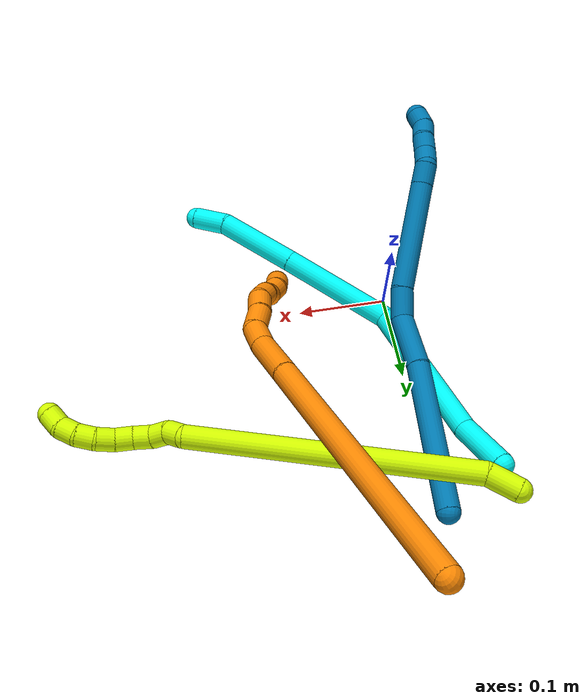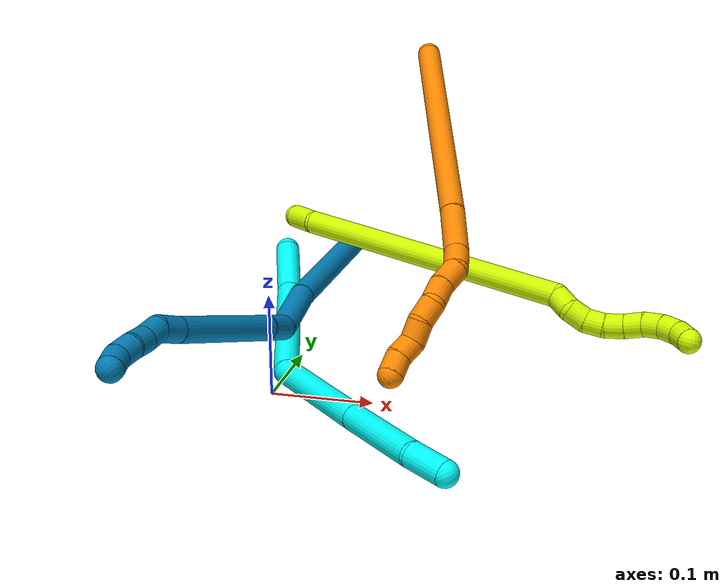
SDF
<sdf version="1.7">
 <world name="default">
  <model name="3">
   <static>0</static>
   <link name="3">
    <collision name="collision-cylinder-e_1_1_4">
     <pose>0.010417 -0.029861 0.008599 1.29041 0.323461 0.244379</pose>
     <geometry><cylinder><radius>0.0125</radius><length>0.065548</length></cylinder></geometry>
     <surface>
      <friction><ode><mu>1.16</mu><mu2>1.16</mu2><slip1>0</slip1><slip2>0</slip2></ode></friction>
      <contact><ode><kp>1e+06</kp><kd>1</kd><max_vel>0</max_vel><min_depth>0.001</min_depth></ode></contact>
     </surface>
    </collision>
    <visual name="visual-cylinder-e_1_1_4">
     <pose>0.010417 -0.029861 0.008599 1.29041 0.323461 0.244379</pose>
     <geometry><cylinder><radius>0.0125</radius><length>0.065548</length></cylinder></geometry>
     <material><ambient>0.003922 1 0.996078 1</ambient></material>
    </visual>
    <collision name="collision-cylinder-e_2_4_5">
     <pose>0.071344 -0.125309 0.033295 1.33013 0.642172 0.510306</pose>
     <geometry><cylinder><radius>0.0125</radius><length>0.168665</length></cylinder></geometry>
     <surface>
      <friction><ode><mu>1.16</mu><mu2>1.16</mu2><slip1>0</slip1><slip2>0</slip2></ode></friction>
      <contact><ode><kp>1e+06</kp><kd>1</kd><max_vel>0</max_vel><min_depth>0.001</min_depth></ode></contact>
     </surface>
    </collision>
    <visual name="visual-cylinder-e_2_4_5">
     <pose>0.071344 -0.125309 0.033295 1.33013 0.642172 0.510306</pose>
     <geometry><cylinder><radius>0.0125</radius><length>0.168665</length></cylinder></geometry>
     <material><ambient>0.003922 1 0.996078 1</ambient></material>
    </visual>
    <collision name="collision-cylinder-e_3_5_6">
     <pose>0.157525 -0.242766 0.028025 1.96154 0.566366 0.819942</pose>
     <geometry><cylinder><radius>0.0125</radius><length>0.132959</length></cylinder></geometry>
     <surface>
      <friction><ode><mu>1.16</mu><mu2>1.16</mu2><slip1>0</slip1><slip2>0</slip2></ode></friction>
      <contact><ode><kp>1e+06</kp><kd>1</kd><max_vel>0</max_vel><min_depth>0.001</min_depth></ode></contact>
     </surface>
    </collision>
    <visual name="visual-cylinder-e_3_5_6">
     <pose>0.157525 -0.242766 0.028025 1.96154 0.566366 0.819942</pose>
     <geometry><cylinder><radius>0.0125</radius><length>0.132959</length></cylinder></geometry>
     <material><ambient>0.003922 1 0.996078 1</ambient></material>
    </visual>
    <collision name="collision-cylinder-e_4_6_7">
     <pose>0.218288 -0.331309 -0.009322 1.98174 0.560227 0.827607</pose>
     <geometry><cylinder><radius>0.0125</radius><length>0.094441</length></cylinder></geometry>
     <surface>
      <friction><ode><mu>1.16</mu><mu2>1.16</mu2><slip1>0</slip1><slip2>0</slip2></ode></friction>
      <contact><ode><kp>1e+06</kp><kd>1</kd><max_vel>0</max_vel><min_depth>0.001</min_depth></ode></contact>
     </surface>
    </collision>
    <visual name="visual-cylinder-e_4_6_7">
     <pose>0.218288 -0.331309 -0.009322 1.98174 0.560227 0.827607</pose>
     <geometry><cylinder><radius>0.0125</radius><length>0.094441</length></cylinder></geometry>
     <material><ambient>0.003922 1 0.996078 1</ambient></material>
    </visual>
    <collision name="collision-cylinder-e_5_7_2">
     <pose>0.248713 -0.383937 -0.034539 2.09554 0.281587 0.482063</pose>
     <geometry><cylinder><radius>0.0125</radius><length>0.038387</length></cylinder></geometry>
     <surface>
      <friction><ode><mu>1.16</mu><mu2>1.16</mu2><slip1>0</slip1><slip2>0</slip2></ode></friction>
      <contact><ode><kp>1e+06</kp><kd>1</kd><max_vel>0</max_vel><min_depth>0.001</min_depth></ode></contact>
     </surface>
    </collision>
    <visual name="visual-cylinder-e_5_7_2">
     <pose>0.248713 -0.383937 -0.034539 2.09554 0.281587 0.482063</pose>
     <geometry><cylinder><radius>0.0125</radius><length>0.038387</length></cylinder></geometry>
     <material><ambient>0.003922 1 0.996078 1</ambient></material>
    </visual>
    <collision name="collision-sphere-2">
     <pose>0.254047 -0.399894 -0.043776 0 -0 0</pose>
     <geometry><sphere><radius>0.0125</radius></sphere></geometry>
     <surface>
      <friction><ode><mu>1.16</mu><mu2>1.16</mu2><slip1>0</slip1><slip2>0</slip2></ode></friction>
      <contact><ode><kp>1e+06</kp><kd>1</kd><max_vel>0</max_vel><min_depth>0.001</min_depth></ode></contact>
     </surface>
    </collision>
    <visual name="visual-sphere-2">
     <pose>0.254047 -0.399894 -0.043776 0 -0 0</pose>
     <geometry><sphere><radius>0.0125</radius></sphere></geometry>
     <material><ambient>0.003922 1 0.996078 1</ambient></material>
    </visual>
    <collision name="collision-sphere-7">
     <pose>0.24338 -0.36798 -0.025302 0 -0 0</pose>
     <geometry><sphere><radius>0.0125</radius></sphere></geometry>
     <surface>
      <friction><ode><mu>1.16</mu><mu2>1.16</mu2><slip1>0</slip1><slip2>0</slip2></ode></friction>
      <contact><ode><kp>1e+06</kp><kd>1</kd><max_vel>0</max_vel><min_depth>0.001</min_depth></ode></contact>
     </surface>
    </collision>
    <visual name="visual-sphere-7">
     <pose>0.24338 -0.36798 -0.025302 0 -0 0</pose>
     <geometry><sphere><radius>0.0125</radius></sphere></geometry>
     <material><ambient>0.003922 1 0.996078 1</ambient></material>
    </visual>
    <collision name="collision-sphere-6">
     <pose>0.193196 -0.294637 0.006658 0 -0 0</pose>
     <geometry><sphere><radius>0.0125</radius></sphere></geometry>
     <surface>
      <friction><ode><mu>1.16</mu><mu2>1.16</mu2><slip1>0</slip1><slip2>0</slip2></ode></friction>
      <contact><ode><kp>1e+06</kp><kd>1</kd><max_vel>0</max_vel><min_depth>0.001</min_depth></ode></contact>
     </surface>
    </collision>
    <visual name="visual-sphere-6">
     <pose>0.193196 -0.294637 0.006658 0 -0 0</pose>
     <geometry><sphere><radius>0.0125</radius></sphere></geometry>
     <material><ambient>0.003922 1 0.996078 1</ambient></material>
    </visual>
    <collision name="collision-sphere-5">
     <pose>0.121854 -0.190895 0.049392 0 -0 0</pose>
     <geometry><sphere><radius>0.0125</radius></sphere></geometry>
     <surface>
      <friction><ode><mu>1.16</mu><mu2>1.16</mu2><slip1>0</slip1><slip2>0</slip2></ode></friction>
      <contact><ode><kp>1e+06</kp><kd>1</kd><max_vel>0</max_vel><min_depth>0.001</min_depth></ode></contact>
     </surface>
    </collision>
    <visual name="visual-sphere-5">
     <pose>0.121854 -0.190895 0.049392 0 -0 0</pose>
     <geometry><sphere><radius>0.0125</radius></sphere></geometry>
     <material><ambient>0.003922 1 0.996078 1</ambient></material>
    </visual>
    <collision name="collision-sphere-1">
     <geometry><sphere><radius>0.0125</radius></sphere></geometry>
     <surface>
      <friction><ode><mu>1.16</mu><mu2>1.16</mu2><slip1>0</slip1><slip2>0</slip2></ode></friction>
      <contact><ode><kp>1e+06</kp><kd>1</kd><max_vel>0</max_vel><min_depth>0.001</min_depth></ode></contact>
     </surface>
    </collision>
    <visual name="visual-sphere-1">
     <geometry><sphere><radius>0.0125</radius></sphere></geometry>
     <material><ambient>0.003922 1 0.996078 1</ambient></material>
    </visual>
    <collision name="collision-sphere-4">
     <pose>0.020834 -0.059722 0.017198 0 -0 0</pose>
     <geometry><sphere><radius>0.0125</radius></sphere></geometry>
     <surface>
      <friction><ode><mu>1.16</mu><mu2>1.16</mu2><slip1>0</slip1><slip2>0</slip2></ode></friction>
      <contact><ode><kp>1e+06</kp><kd>1</kd><max_vel>0</max_vel><min_depth>0.001</min_depth></ode></contact>
     </surface>
    </collision>
    <visual name="visual-sphere-4">
     <pose>0.020834 -0.059722 0.017198 0 -0 0</pose>
     <geometry><sphere><radius>0.0125</radius></sphere></geometry>
     <material><ambient>0.003922 1 0.996078 1</ambient></material>
    </visual>
    <inertial>
     <pose>0.127646 -0.202795 0.015399 0 -0 0</pose>
     <mass>0.5</mass>
     <inertia>
      <ixx>0.000829</ixx>
      <ixy>0</ixy>
      <ixz>0</ixz>
      <iyy>0.000541</iyy>
      <iyz>0</iyz>
      <izz>0.000155</izz>
     </inertia>
    </inertial>
   </link>
   <pose>-0.06038 0.245132 0.06252 2.12259 -0.77068 -1.53394</pose>
  </model>
  <model name="9">
   <static>0</static>
   <link name="9">
    <collision name="collision-cylinder-e_1_1_4">
     <pose>-0.063284 -0.040367 -0.035509 2.29225 -0.866574 -1.59357</pose>
     <geometry><cylinder><radius>0.0125</radius><length>0.166076</length></cylinder></geometry>
     <surface>
      <friction><ode><mu>1.16</mu><mu2>1.16</mu2><slip1>0</slip1><slip2>0</slip2></ode></friction>
      <contact><ode><kp>1e+06</kp><kd>1</kd><max_vel>0</max_vel><min_depth>0.001</min_depth></ode></contact>
     </surface>
    </collision>
    <visual name="visual-cylinder-e_1_1_4">
     <pose>-0.063284 -0.040367 -0.035509 2.29225 -0.866574 -1.59357</pose>
     <geometry><cylinder><radius>0.0125</radius><length>0.166076</length></cylinder></geometry>
     <material><ambient>0 0.490196 0.709804 1</ambient></material>
    </visual>
    <collision name="collision-cylinder-e_2_4_5">
     <pose>-0.15056 -0.094491 -0.088796 2.48303 -0.817909 -1.80622</pose>
     <geometry><cylinder><radius>0.0125</radius><length>0.065755</length></cylinder></geometry>
     <surface>
      <friction><ode><mu>1.16</mu><mu2>1.16</mu2><slip1>0</slip1><slip2>0</slip2></ode></friction>
      <contact><ode><kp>1e+06</kp><kd>1</kd><max_vel>0</max_vel><min_depth>0.001</min_depth></ode></contact>
     </surface>
    </collision>
    <visual name="visual-cylinder-e_2_4_5">
     <pose>-0.15056 -0.094491 -0.088796 2.48303 -0.817909 -1.80622</pose>
     <geometry><cylinder><radius>0.0125</radius><length>0.065755</length></cylinder></geometry>
     <material><ambient>0 0.490196 0.709804 1</ambient></material>
    </visual>
    <collision name="collision-cylinder-e_3_5_6">
     <pose>-0.1866 -0.120666 -0.108773 1.74599 -0.762628 -0.892009</pose>
     <geometry><cylinder><radius>0.0125</radius><length>0.034883</length></cylinder></geometry>
     <surface>
      <friction><ode><mu>1.16</mu><mu2>1.16</mu2><slip1>0</slip1><slip2>0</slip2></ode></friction>
      <contact><ode><kp>1e+06</kp><kd>1</kd><max_vel>0</max_vel><min_depth>0.001</min_depth></ode></contact>
     </surface>
    </collision>
    <visual name="visual-cylinder-e_3_5_6">
     <pose>-0.1866 -0.120666 -0.108773 1.74599 -0.762628 -0.892009</pose>
     <geometry><cylinder><radius>0.0125</radius><length>0.034883</length></cylinder></geometry>
     <material><ambient>0 0.490196 0.709804 1</ambient></material>
    </visual>
    <collision name="collision-cylinder-e_4_6_7">
     <pose>-0.247766 -0.172084 -0.110368 1.55534 -0.899656 -0.887612</pose>
     <geometry><cylinder><radius>0.0125</radius><length>0.125441</length></cylinder></geometry>
     <surface>
      <friction><ode><mu>1.16</mu><mu2>1.16</mu2><slip1>0</slip1><slip2>0</slip2></ode></friction>
      <contact><ode><kp>1e+06</kp><kd>1</kd><max_vel>0</max_vel><min_depth>0.001</min_depth></ode></contact>
     </surface>
    </collision>
    <visual name="visual-cylinder-e_4_6_7">
     <pose>-0.247766 -0.172084 -0.110368 1.55534 -0.899656 -0.887612</pose>
     <geometry><cylinder><radius>0.0125</radius><length>0.125441</length></cylinder></geometry>
     <material><ambient>0 0.490196 0.709804 1</ambient></material>
    </visual>
    <collision name="collision-cylinder-e_5_7_8">
     <pose>-0.306411 -0.219446 -0.109064 1.48715 -0.848668 -0.787571</pose>
     <geometry><cylinder><radius>0.0125</radius><length>0.025392</length></cylinder></geometry>
     <surface>
      <friction><ode><mu>1.16</mu><mu2>1.16</mu2><slip1>0</slip1><slip2>0</slip2></ode></friction>
      <contact><ode><kp>1e+06</kp><kd>1</kd><max_vel>0</max_vel><min_depth>0.001</min_depth></ode></contact>
     </surface>
    </collision>
    <visual name="visual-cylinder-e_5_7_8">
     <pose>-0.306411 -0.219446 -0.109064 1.48715 -0.848668 -0.787571</pose>
     <geometry><cylinder><radius>0.0125</radius><length>0.025392</length></cylinder></geometry>
     <material><ambient>0 0.490196 0.709804 1</ambient></material>
    </visual>
    <collision name="collision-cylinder-e_6_8_9">
     <pose>-0.324921 -0.231758 -0.11213 2.33265 -1.02488 -1.84068</pose>
     <geometry><cylinder><radius>0.0125</radius><length>0.021023</length></cylinder></geometry>
     <surface>
      <friction><ode><mu>1.16</mu><mu2>1.16</mu2><slip1>0</slip1><slip2>0</slip2></ode></friction>
      <contact><ode><kp>1e+06</kp><kd>1</kd><max_vel>0</max_vel><min_depth>0.001</min_depth></ode></contact>
     </surface>
    </collision>
    <visual name="visual-cylinder-e_6_8_9">
     <pose>-0.324921 -0.231758 -0.11213 2.33265 -1.02488 -1.84068</pose>
     <geometry><cylinder><radius>0.0125</radius><length>0.021023</length></cylinder></geometry>
     <material><ambient>0 0.490196 0.709804 1</ambient></material>
    </visual>
    <collision name="collision-cylinder-e_7_9_10">
     <pose>-0.341927 -0.241383 -0.119231 2.10176 -0.883575 -1.38105</pose>
     <geometry><cylinder><radius>0.0125</radius><length>0.020755</length></cylinder></geometry>
     <surface>
      <friction><ode><mu>1.16</mu><mu2>1.16</mu2><slip1>0</slip1><slip2>0</slip2></ode></friction>
      <contact><ode><kp>1e+06</kp><kd>1</kd><max_vel>0</max_vel><min_depth>0.001</min_depth></ode></contact>
     </surface>
    </collision>
    <visual name="visual-cylinder-e_7_9_10">
     <pose>-0.341927 -0.241383 -0.119231 2.10176 -0.883575 -1.38105</pose>
     <geometry><cylinder><radius>0.0125</radius><length>0.020755</length></cylinder></geometry>
     <material><ambient>0 0.490196 0.709804 1</ambient></material>
    </visual>
    <collision name="collision-cylinder-e_8_10_11">
     <pose>-0.358932 -0.250657 -0.125823 2.30694 -1.07547 -1.86298</pose>
     <geometry><cylinder><radius>0.0125</radius><length>0.02042</length></cylinder></geometry>
     <surface>
      <friction><ode><mu>1.16</mu><mu2>1.16</mu2><slip1>0</slip1><slip2>0</slip2></ode></friction>
      <contact><ode><kp>1e+06</kp><kd>1</kd><max_vel>0</max_vel><min_depth>0.001</min_depth></ode></contact>
     </surface>
    </collision>
    <visual name="visual-cylinder-e_8_10_11">
     <pose>-0.358932 -0.250657 -0.125823 2.30694 -1.07547 -1.86298</pose>
     <geometry><cylinder><radius>0.0125</radius><length>0.02042</length></cylinder></geometry>
     <material><ambient>0 0.490196 0.709804 1</ambient></material>
    </visual>
    <collision name="collision-cylinder-e_9_11_2">
     <pose>-0.374319 -0.259233 -0.135144 2.45399 -0.684638 -1.56611</pose>
     <geometry><cylinder><radius>0.0125</radius><length>0.020256</length></cylinder></geometry>
     <surface>
      <friction><ode><mu>1.16</mu><mu2>1.16</mu2><slip1>0</slip1><slip2>0</slip2></ode></friction>
      <contact><ode><kp>1e+06</kp><kd>1</kd><max_vel>0</max_vel><min_depth>0.001</min_depth></ode></contact>
     </surface>
    </collision>
    <visual name="visual-cylinder-e_9_11_2">
     <pose>-0.374319 -0.259233 -0.135144 2.45399 -0.684638 -1.56611</pose>
     <geometry><cylinder><radius>0.0125</radius><length>0.020256</length></cylinder></geometry>
     <material><ambient>0 0.490196 0.709804 1</ambient></material>
    </visual>
    <collision name="collision-sphere-2">
     <pose>-0.380724 -0.264212 -0.141207 0 -0 0</pose>
     <geometry><sphere><radius>0.0125</radius></sphere></geometry>
     <surface>
      <friction><ode><mu>1.16</mu><mu2>1.16</mu2><slip1>0</slip1><slip2>0</slip2></ode></friction>
      <contact><ode><kp>1e+06</kp><kd>1</kd><max_vel>0</max_vel><min_depth>0.001</min_depth></ode></contact>
     </surface>
    </collision>
    <visual name="visual-sphere-2">
     <pose>-0.380724 -0.264212 -0.141207 0 -0 0</pose>
     <geometry><sphere><radius>0.0125</radius></sphere></geometry>
     <material><ambient>0 0.490196 0.709804 1</ambient></material>
    </visual>
    <collision name="collision-sphere-11">
     <pose>-0.367914 -0.254253 -0.129081 0 -0 0</pose>
     <geometry><sphere><radius>0.0125</radius></sphere></geometry>
     <surface>
      <friction><ode><mu>1.16</mu><mu2>1.16</mu2><slip1>0</slip1><slip2>0</slip2></ode></friction>
      <contact><ode><kp>1e+06</kp><kd>1</kd><max_vel>0</max_vel><min_depth>0.001</min_depth></ode></contact>
     </surface>
    </collision>
    <visual name="visual-sphere-11">
     <pose>-0.367914 -0.254253 -0.129081 0 -0 0</pose>
     <geometry><sphere><radius>0.0125</radius></sphere></geometry>
     <material><ambient>0 0.490196 0.709804 1</ambient></material>
    </visual>
    <collision name="collision-sphere-10">
     <pose>-0.349949 -0.24706 -0.122564 0 -0 0</pose>
     <geometry><sphere><radius>0.0125</radius></sphere></geometry>
     <surface>
      <friction><ode><mu>1.16</mu><mu2>1.16</mu2><slip1>0</slip1><slip2>0</slip2></ode></friction>
      <contact><ode><kp>1e+06</kp><kd>1</kd><max_vel>0</max_vel><min_depth>0.001</min_depth></ode></contact>
     </surface>
    </collision>
    <visual name="visual-sphere-10">
     <pose>-0.349949 -0.24706 -0.122564 0 -0 0</pose>
     <geometry><sphere><radius>0.0125</radius></sphere></geometry>
     <material><ambient>0 0.490196 0.709804 1</ambient></material>
    </visual>
    <collision name="collision-sphere-9">
     <pose>-0.333905 -0.235706 -0.115897 0 -0 0</pose>
     <geometry><sphere><radius>0.0125</radius></sphere></geometry>
     <surface>
      <friction><ode><mu>1.16</mu><mu2>1.16</mu2><slip1>0</slip1><slip2>0</slip2></ode></friction>
      <contact><ode><kp>1e+06</kp><kd>1</kd><max_vel>0</max_vel><min_depth>0.001</min_depth></ode></contact>
     </surface>
    </collision>
    <visual name="visual-sphere-9">
     <pose>-0.333905 -0.235706 -0.115897 0 -0 0</pose>
     <geometry><sphere><radius>0.0125</radius></sphere></geometry>
     <material><ambient>0 0.490196 0.709804 1</ambient></material>
    </visual>
    <collision name="collision-sphere-4">
     <pose>-0.126569 -0.080734 -0.071017 0 -0 0</pose>
     <geometry><sphere><radius>0.0125</radius></sphere></geometry>
     <surface>
      <friction><ode><mu>1.16</mu><mu2>1.16</mu2><slip1>0</slip1><slip2>0</slip2></ode></friction>
      <contact><ode><kp>1e+06</kp><kd>1</kd><max_vel>0</max_vel><min_depth>0.001</min_depth></ode></contact>
     </surface>
    </collision>
    <visual name="visual-sphere-4">
     <pose>-0.126569 -0.080734 -0.071017 0 -0 0</pose>
     <geometry><sphere><radius>0.0125</radius></sphere></geometry>
     <material><ambient>0 0.490196 0.709804 1</ambient></material>
    </visual>
    <collision name="collision-sphere-1">
     <geometry><sphere><radius>0.0125</radius></sphere></geometry>
     <surface>
      <friction><ode><mu>1.16</mu><mu2>1.16</mu2><slip1>0</slip1><slip2>0</slip2></ode></friction>
      <contact><ode><kp>1e+06</kp><kd>1</kd><max_vel>0</max_vel><min_depth>0.001</min_depth></ode></contact>
     </surface>
    </collision>
    <visual name="visual-sphere-1">
     <geometry><sphere><radius>0.0125</radius></sphere></geometry>
     <material><ambient>0 0.490196 0.709804 1</ambient></material>
    </visual>
    <collision name="collision-sphere-8">
     <pose>-0.315938 -0.227809 -0.108363 0 -0 0</pose>
     <geometry><sphere><radius>0.0125</radius></sphere></geometry>
     <surface>
      <friction><ode><mu>1.16</mu><mu2>1.16</mu2><slip1>0</slip1><slip2>0</slip2></ode></friction>
      <contact><ode><kp>1e+06</kp><kd>1</kd><max_vel>0</max_vel><min_depth>0.001</min_depth></ode></contact>
     </surface>
    </collision>
    <visual name="visual-sphere-8">
     <pose>-0.315938 -0.227809 -0.108363 0 -0 0</pose>
     <geometry><sphere><radius>0.0125</radius></sphere></geometry>
     <material><ambient>0 0.490196 0.709804 1</ambient></material>
    </visual>
    <collision name="collision-sphere-5">
     <pose>-0.174551 -0.108249 -0.106575 0 -0 0</pose>
     <geometry><sphere><radius>0.0125</radius></sphere></geometry>
     <surface>
      <friction><ode><mu>1.16</mu><mu2>1.16</mu2><slip1>0</slip1><slip2>0</slip2></ode></friction>
      <contact><ode><kp>1e+06</kp><kd>1</kd><max_vel>0</max_vel><min_depth>0.001</min_depth></ode></contact>
     </surface>
    </collision>
    <visual name="visual-sphere-5">
     <pose>-0.174551 -0.108249 -0.106575 0 -0 0</pose>
     <geometry><sphere><radius>0.0125</radius></sphere></geometry>
     <material><ambient>0 0.490196 0.709804 1</ambient></material>
    </visual>
    <collision name="collision-sphere-6">
     <pose>-0.198649 -0.133084 -0.11097 0 -0 0</pose>
     <geometry><sphere><radius>0.0125</radius></sphere></geometry>
     <surface>
      <friction><ode><mu>1.16</mu><mu2>1.16</mu2><slip1>0</slip1><slip2>0</slip2></ode></friction>
      <contact><ode><kp>1e+06</kp><kd>1</kd><max_vel>0</max_vel><min_depth>0.001</min_depth></ode></contact>
     </surface>
    </collision>
    <visual name="visual-sphere-6">
     <pose>-0.198649 -0.133084 -0.11097 0 -0 0</pose>
     <geometry><sphere><radius>0.0125</radius></sphere></geometry>
     <material><ambient>0 0.490196 0.709804 1</ambient></material>
    </visual>
    <collision name="collision-sphere-7">
     <pose>-0.296884 -0.211084 -0.109765 0 -0 0</pose>
     <geometry><sphere><radius>0.0125</radius></sphere></geometry>
     <surface>
      <friction><ode><mu>1.16</mu><mu2>1.16</mu2><slip1>0</slip1><slip2>0</slip2></ode></friction>
      <contact><ode><kp>1e+06</kp><kd>1</kd><max_vel>0</max_vel><min_depth>0.001</min_depth></ode></contact>
     </surface>
    </collision>
    <visual name="visual-sphere-7">
     <pose>-0.296884 -0.211084 -0.109765 0 -0 0</pose>
     <geometry><sphere><radius>0.0125</radius></sphere></geometry>
     <material><ambient>0 0.490196 0.709804 1</ambient></material>
    </visual>
    <inertial>
     <pose>-0.189237 -0.129073 -0.084566 0 -0 0</pose>
     <mass>0.5</mass>
     <inertia>
      <ixx>-0.000328</ixx>
      <ixy>0</ixy>
      <ixz>0</ixz>
      <iyy>-2.2e-05</iyy>
      <iyz>0</iyz>
      <izz>0.000759</izz>
     </inertia>
    </inertial>
   </link>
   <pose>0.006011 0.285216 0.064315 -0.986793 -0.274365 0.825451</pose>
  </model>
  <model name="15">
   <static>0</static>
   <link name="15">
    <collision name="collision-cylinder-e_1_1_4">
     <pose>0.012456 -0.011518 -0.00041 1.60635 0.824198 0.850617</pose>
     <geometry><cylinder><radius>0.0125</radius><length>0.033941</length></cylinder></geometry>
     <surface>
      <friction><ode><mu>1.16</mu><mu2>1.16</mu2><slip1>0</slip1><slip2>0</slip2></ode></friction>
      <contact><ode><kp>1e+06</kp><kd>1</kd><max_vel>0</max_vel><min_depth>0.001</min_depth></ode></contact>
     </surface>
    </collision>
    <visual name="visual-cylinder-e_1_1_4">
     <pose>0.012456 -0.011518 -0.00041 1.60635 0.824198 0.850617</pose>
     <geometry><cylinder><radius>0.0125</radius><length>0.033941</length></cylinder></geometry>
     <material><ambient>0.835294 1 0 1</ambient></material>
    </visual>
    <collision name="collision-cylinder-e_2_4_5">
     <pose>0.093287 -0.159259 -0.000978 1.57196 0.465191 0.465713</pose>
     <geometry><cylinder><radius>0.0125</radius><length>0.30484</length></cylinder></geometry>
     <surface>
      <friction><ode><mu>1.16</mu><mu2>1.16</mu2><slip1>0</slip1><slip2>0</slip2></ode></friction>
      <contact><ode><kp>1e+06</kp><kd>1</kd><max_vel>0</max_vel><min_depth>0.001</min_depth></ode></contact>
     </surface>
    </collision>
    <visual name="visual-cylinder-e_2_4_5">
     <pose>0.093287 -0.159259 -0.000978 1.57196 0.465191 0.465713</pose>
     <geometry><cylinder><radius>0.0125</radius><length>0.30484</length></cylinder></geometry>
     <material><ambient>0.835294 1 0 1</ambient></material>
    </visual>
    <collision name="collision-cylinder-e_3_5_6">
     <pose>0.167506 -0.302764 0.003415 1.01218 0.597618 0.338183</pose>
     <geometry><cylinder><radius>0.0125</radius><length>0.020774</length></cylinder></geometry>
     <surface>
      <friction><ode><mu>1.16</mu><mu2>1.16</mu2><slip1>0</slip1><slip2>0</slip2></ode></friction>
      <contact><ode><kp>1e+06</kp><kd>1</kd><max_vel>0</max_vel><min_depth>0.001</min_depth></ode></contact>
     </surface>
    </collision>
    <visual name="visual-cylinder-e_3_5_6">
     <pose>0.167506 -0.302764 0.003415 1.01218 0.597618 0.338183</pose>
     <geometry><cylinder><radius>0.0125</radius><length>0.020774</length></cylinder></geometry>
     <material><ambient>0.835294 1 0 1</ambient></material>
    </visual>
    <collision name="collision-cylinder-e_4_6_7">
     <pose>0.174789 -0.319292 0.011564 1.19977 0.143947 0.098546</pose>
     <geometry><cylinder><radius>0.0125</radius><length>0.020052</length></cylinder></geometry>
     <surface>
      <friction><ode><mu>1.16</mu><mu2>1.16</mu2><slip1>0</slip1><slip2>0</slip2></ode></friction>
      <contact><ode><kp>1e+06</kp><kd>1</kd><max_vel>0</max_vel><min_depth>0.001</min_depth></ode></contact>
     </surface>
    </collision>
    <visual name="visual-cylinder-e_4_6_7">
     <pose>0.174789 -0.319292 0.011564 1.19977 0.143947 0.098546</pose>
     <geometry><cylinder><radius>0.0125</radius><length>0.020052</length></cylinder></geometry>
     <material><ambient>0.835294 1 0 1</ambient></material>
    </visual>
    <collision name="collision-cylinder-e_5_7_8">
     <pose>0.179103 -0.338288 0.015083 1.57882 0.286836 0.289113</pose>
     <geometry><cylinder><radius>0.0125</radius><length>0.020328</length></cylinder></geometry>
     <surface>
      <friction><ode><mu>1.16</mu><mu2>1.16</mu2><slip1>0</slip1><slip2>0</slip2></ode></friction>
      <contact><ode><kp>1e+06</kp><kd>1</kd><max_vel>0</max_vel><min_depth>0.001</min_depth></ode></contact>
     </surface>
    </collision>
    <visual name="visual-cylinder-e_5_7_8">
     <pose>0.179103 -0.338288 0.015083 1.57882 0.286836 0.289113</pose>
     <geometry><cylinder><radius>0.0125</radius><length>0.020328</length></cylinder></geometry>
     <material><ambient>0.835294 1 0 1</ambient></material>
    </visual>
    <collision name="collision-cylinder-e_6_8_9">
     <pose>0.183808 -0.357609 0.01268 1.80901 0.183629 0.233152</pose>
     <geometry><cylinder><radius>0.0125</radius><length>0.020038</length></cylinder></geometry>
     <surface>
      <friction><ode><mu>1.16</mu><mu2>1.16</mu2><slip1>0</slip1><slip2>0</slip2></ode></friction>
      <contact><ode><kp>1e+06</kp><kd>1</kd><max_vel>0</max_vel><min_depth>0.001</min_depth></ode></contact>
     </surface>
    </collision>
    <visual name="visual-cylinder-e_6_8_9">
     <pose>0.183808 -0.357609 0.01268 1.80901 0.183629 0.233152</pose>
     <geometry><cylinder><radius>0.0125</radius><length>0.020038</length></cylinder></geometry>
     <material><ambient>0.835294 1 0 1</ambient></material>
    </visual>
    <collision name="collision-cylinder-e_7_9_10">
     <pose>0.188738 -0.375975 0.006708 1.96399 0.314815 0.466681</pose>
     <geometry><cylinder><radius>0.0125</radius><length>0.020025</length></cylinder></geometry>
     <surface>
      <friction><ode><mu>1.16</mu><mu2>1.16</mu2><slip1>0</slip1><slip2>0</slip2></ode></friction>
      <contact><ode><kp>1e+06</kp><kd>1</kd><max_vel>0</max_vel><min_depth>0.001</min_depth></ode></contact>
     </surface>
    </collision>
    <visual name="visual-cylinder-e_7_9_10">
     <pose>0.188738 -0.375975 0.006708 1.96399 0.314815 0.466681</pose>
     <geometry><cylinder><radius>0.0125</radius><length>0.020025</length></cylinder></geometry>
     <material><ambient>0.835294 1 0 1</ambient></material>
    </visual>
    <collision name="collision-cylinder-e_8_10_11">
     <pose>0.196876 -0.393264 0.001491 1.75349 0.527942 0.628079</pose>
     <geometry><cylinder><radius>0.0125</radius><length>0.020001</length></cylinder></geometry>
     <surface>
      <friction><ode><mu>1.16</mu><mu2>1.16</mu2><slip1>0</slip1><slip2>0</slip2></ode></friction>
      <contact><ode><kp>1e+06</kp><kd>1</kd><max_vel>0</max_vel><min_depth>0.001</min_depth></ode></contact>
     </surface>
    </collision>
    <visual name="visual-cylinder-e_8_10_11">
     <pose>0.196876 -0.393264 0.001491 1.75349 0.527942 0.628079</pose>
     <geometry><cylinder><radius>0.0125</radius><length>0.020001</length></cylinder></geometry>
     <material><ambient>0.835294 1 0 1</ambient></material>
    </visual>
    <collision name="collision-cylinder-e_9_11_12">
     <pose>0.208856 -0.408951 0.000223 1.52885 0.767261 0.738575</pose>
     <geometry><cylinder><radius>0.0125</radius><length>0.020001</length></cylinder></geometry>
     <surface>
      <friction><ode><mu>1.16</mu><mu2>1.16</mu2><slip1>0</slip1><slip2>0</slip2></ode></friction>
      <contact><ode><kp>1e+06</kp><kd>1</kd><max_vel>0</max_vel><min_depth>0.001</min_depth></ode></contact>
     </surface>
    </collision>
    <visual name="visual-cylinder-e_9_11_12">
     <pose>0.208856 -0.408951 0.000223 1.52885 0.767261 0.738575</pose>
     <geometry><cylinder><radius>0.0125</radius><length>0.020001</length></cylinder></geometry>
     <material><ambient>0.835294 1 0 1</ambient></material>
    </visual>
    <collision name="collision-cylinder-e_10_12_2">
     <pose>0.2248 -0.420295 0.00184 1.26408 1.12019 0.860917</pose>
     <geometry><cylinder><radius>0.0125</radius><length>0.02</length></cylinder></geometry>
     <surface>
      <friction><ode><mu>1.16</mu><mu2>1.16</mu2><slip1>0</slip1><slip2>0</slip2></ode></friction>
      <contact><ode><kp>1e+06</kp><kd>1</kd><max_vel>0</max_vel><min_depth>0.001</min_depth></ode></contact>
     </surface>
    </collision>
    <visual name="visual-cylinder-e_10_12_2">
     <pose>0.2248 -0.420295 0.00184 1.26408 1.12019 0.860917</pose>
     <geometry><cylinder><radius>0.0125</radius><length>0.02</length></cylinder></geometry>
     <material><ambient>0.835294 1 0 1</ambient></material>
    </visual>
    <collision name="collision-sphere-2">
     <pose>0.233802 -0.424447 0.003155 0 -0 0</pose>
     <geometry><sphere><radius>0.0125</radius></sphere></geometry>
     <surface>
      <friction><ode><mu>1.16</mu><mu2>1.16</mu2><slip1>0</slip1><slip2>0</slip2></ode></friction>
      <contact><ode><kp>1e+06</kp><kd>1</kd><max_vel>0</max_vel><min_depth>0.001</min_depth></ode></contact>
     </surface>
    </collision>
    <visual name="visual-sphere-2">
     <pose>0.233802 -0.424447 0.003155 0 -0 0</pose>
     <geometry><sphere><radius>0.0125</radius></sphere></geometry>
     <material><ambient>0.835294 1 0 1</ambient></material>
    </visual>
    <collision name="collision-sphere-12">
     <pose>0.215798 -0.416144 0.000525 0 -0 0</pose>
     <geometry><sphere><radius>0.0125</radius></sphere></geometry>
     <surface>
      <friction><ode><mu>1.16</mu><mu2>1.16</mu2><slip1>0</slip1><slip2>0</slip2></ode></friction>
      <contact><ode><kp>1e+06</kp><kd>1</kd><max_vel>0</max_vel><min_depth>0.001</min_depth></ode></contact>
     </surface>
    </collision>
    <visual name="visual-sphere-12">
     <pose>0.215798 -0.416144 0.000525 0 -0 0</pose>
     <geometry><sphere><radius>0.0125</radius></sphere></geometry>
     <material><ambient>0.835294 1 0 1</ambient></material>
    </visual>
    <collision name="collision-sphere-11">
     <pose>0.201914 -0.401759 -7.9e-05 0 -0 0</pose>
     <geometry><sphere><radius>0.0125</radius></sphere></geometry>
     <surface>
      <friction><ode><mu>1.16</mu><mu2>1.16</mu2><slip1>0</slip1><slip2>0</slip2></ode></friction>
      <contact><ode><kp>1e+06</kp><kd>1</kd><max_vel>0</max_vel><min_depth>0.001</min_depth></ode></contact>
     </surface>
    </collision>
    <visual name="visual-sphere-11">
     <pose>0.201914 -0.401759 -7.9e-05 0 -0 0</pose>
     <geometry><sphere><radius>0.0125</radius></sphere></geometry>
     <material><ambient>0.835294 1 0 1</ambient></material>
    </visual>
    <collision name="collision-sphere-10">
     <pose>0.191838 -0.384769 0.00306 0 -0 0</pose>
     <geometry><sphere><radius>0.0125</radius></sphere></geometry>
     <surface>
      <friction><ode><mu>1.16</mu><mu2>1.16</mu2><slip1>0</slip1><slip2>0</slip2></ode></friction>
      <contact><ode><kp>1e+06</kp><kd>1</kd><max_vel>0</max_vel><min_depth>0.001</min_depth></ode></contact>
     </surface>
    </collision>
    <visual name="visual-sphere-10">
     <pose>0.191838 -0.384769 0.00306 0 -0 0</pose>
     <geometry><sphere><radius>0.0125</radius></sphere></geometry>
     <material><ambient>0.835294 1 0 1</ambient></material>
    </visual>
    <collision name="collision-sphere-9">
     <pose>0.185637 -0.367181 0.010356 0 -0 0</pose>
     <geometry><sphere><radius>0.0125</radius></sphere></geometry>
     <surface>
      <friction><ode><mu>1.16</mu><mu2>1.16</mu2><slip1>0</slip1><slip2>0</slip2></ode></friction>
      <contact><ode><kp>1e+06</kp><kd>1</kd><max_vel>0</max_vel><min_depth>0.001</min_depth></ode></contact>
     </surface>
    </collision>
    <visual name="visual-sphere-9">
     <pose>0.185637 -0.367181 0.010356 0 -0 0</pose>
     <geometry><sphere><radius>0.0125</radius></sphere></geometry>
     <material><ambient>0.835294 1 0 1</ambient></material>
    </visual>
    <collision name="collision-sphere-4">
     <pose>0.024913 -0.023036 -0.000819 0 -0 0</pose>
     <geometry><sphere><radius>0.0125</radius></sphere></geometry>
     <surface>
      <friction><ode><mu>1.16</mu><mu2>1.16</mu2><slip1>0</slip1><slip2>0</slip2></ode></friction>
      <contact><ode><kp>1e+06</kp><kd>1</kd><max_vel>0</max_vel><min_depth>0.001</min_depth></ode></contact>
     </surface>
    </collision>
    <visual name="visual-sphere-4">
     <pose>0.024913 -0.023036 -0.000819 0 -0 0</pose>
     <geometry><sphere><radius>0.0125</radius></sphere></geometry>
     <material><ambient>0.835294 1 0 1</ambient></material>
    </visual>
    <collision name="collision-sphere-1">
     <geometry><sphere><radius>0.0125</radius></sphere></geometry>
     <surface>
      <friction><ode><mu>1.16</mu><mu2>1.16</mu2><slip1>0</slip1><slip2>0</slip2></ode></friction>
      <contact><ode><kp>1e+06</kp><kd>1</kd><max_vel>0</max_vel><min_depth>0.001</min_depth></ode></contact>
     </surface>
    </collision>
    <visual name="visual-sphere-1">
     <geometry><sphere><radius>0.0125</radius></sphere></geometry>
     <material><ambient>0.835294 1 0 1</ambient></material>
    </visual>
    <collision name="collision-sphere-8">
     <pose>0.181979 -0.348037 0.015005 0 -0 0</pose>
     <geometry><sphere><radius>0.0125</radius></sphere></geometry>
     <surface>
      <friction><ode><mu>1.16</mu><mu2>1.16</mu2><slip1>0</slip1><slip2>0</slip2></ode></friction>
      <contact><ode><kp>1e+06</kp><kd>1</kd><max_vel>0</max_vel><min_depth>0.001</min_depth></ode></contact>
     </surface>
    </collision>
    <visual name="visual-sphere-8">
     <pose>0.181979 -0.348037 0.015005 0 -0 0</pose>
     <geometry><sphere><radius>0.0125</radius></sphere></geometry>
     <material><ambient>0.835294 1 0 1</ambient></material>
    </visual>
    <collision name="collision-sphere-5">
     <pose>0.161662 -0.295482 -0.001136 0 -0 0</pose>
     <geometry><sphere><radius>0.0125</radius></sphere></geometry>
     <surface>
      <friction><ode><mu>1.16</mu><mu2>1.16</mu2><slip1>0</slip1><slip2>0</slip2></ode></friction>
      <contact><ode><kp>1e+06</kp><kd>1</kd><max_vel>0</max_vel><min_depth>0.001</min_depth></ode></contact>
     </surface>
    </collision>
    <visual name="visual-sphere-5">
     <pose>0.161662 -0.295482 -0.001136 0 -0 0</pose>
     <geometry><sphere><radius>0.0125</radius></sphere></geometry>
     <material><ambient>0.835294 1 0 1</ambient></material>
    </visual>
    <collision name="collision-sphere-6">
     <pose>0.173351 -0.310045 0.007966 0 -0 0</pose>
     <geometry><sphere><radius>0.0125</radius></sphere></geometry>
     <surface>
      <friction><ode><mu>1.16</mu><mu2>1.16</mu2><slip1>0</slip1><slip2>0</slip2></ode></friction>
      <contact><ode><kp>1e+06</kp><kd>1</kd><max_vel>0</max_vel><min_depth>0.001</min_depth></ode></contact>
     </surface>
    </collision>
    <visual name="visual-sphere-6">
     <pose>0.173351 -0.310045 0.007966 0 -0 0</pose>
     <geometry><sphere><radius>0.0125</radius></sphere></geometry>
     <material><ambient>0.835294 1 0 1</ambient></material>
    </visual>
    <collision name="collision-sphere-7">
     <pose>0.176227 -0.32854 0.015161 0 -0 0</pose>
     <geometry><sphere><radius>0.0125</radius></sphere></geometry>
     <surface>
      <friction><ode><mu>1.16</mu><mu2>1.16</mu2><slip1>0</slip1><slip2>0</slip2></ode></friction>
      <contact><ode><kp>1e+06</kp><kd>1</kd><max_vel>0</max_vel><min_depth>0.001</min_depth></ode></contact>
     </surface>
    </collision>
    <visual name="visual-sphere-7">
     <pose>0.176227 -0.32854 0.015161 0 -0 0</pose>
     <geometry><sphere><radius>0.0125</radius></sphere></geometry>
     <material><ambient>0.835294 1 0 1</ambient></material>
    </visual>
    <inertial>
     <pose>0.119119 -0.215308 0.001514 0 -0 0</pose>
     <mass>0.5</mass>
     <inertia>
      <ixx>0.002882</ixx>
      <ixy>0</ixy>
      <ixz>0</ixz>
      <iyy>0.001406</iyy>
      <iyz>0</iyz>
      <izz>0.00106</izz>
     </inertia>
    </inertial>
   </link>
   <pose>-0.061296 0.283819 0.089319 2.93221 -0.204283 -1.40996</pose>
  </model>
  <model name="19">
   <static>0</static>
   <link name="19">
    <collision name="collision-cylinder-e_1_1_4">
     <pose>0.054918 -0.129539 0.008915 1.50209 0.40013 0.374178</pose>
     <geometry><cylinder><radius>0.0125</radius><length>0.281964</length></cylinder></geometry>
     <surface>
      <friction><ode><mu>1.16</mu><mu2>1.16</mu2><slip1>0</slip1><slip2>0</slip2></ode></friction>
      <contact><ode><kp>1e+06</kp><kd>1</kd><max_vel>0</max_vel><min_depth>0.001</min_depth></ode></contact>
     </surface>
    </collision>
    <visual name="visual-cylinder-e_1_1_4">
     <pose>0.054918 -0.129539 0.008915 1.50209 0.40013 0.374178</pose>
     <geometry><cylinder><radius>0.0125</radius><length>0.281964</length></cylinder></geometry>
     <material><ambient>0.996078 0.537255 0 1</ambient></material>
    </visual>
    <collision name="collision-cylinder-e_2_4_5">
     <pose>0.121082 -0.284764 0.017289 1.59182 0.412631 0.421144</pose>
     <geometry><cylinder><radius>0.0125</radius><length>0.05609</length></cylinder></geometry>
     <surface>
      <friction><ode><mu>1.16</mu><mu2>1.16</mu2><slip1>0</slip1><slip2>0</slip2></ode></friction>
      <contact><ode><kp>1e+06</kp><kd>1</kd><max_vel>0</max_vel><min_depth>0.001</min_depth></ode></contact>
     </surface>
    </collision>
    <visual name="visual-cylinder-e_2_4_5">
     <pose>0.121082 -0.284764 0.017289 1.59182 0.412631 0.421144</pose>
     <geometry><cylinder><radius>0.0125</radius><length>0.05609</length></cylinder></geometry>
     <material><ambient>0.996078 0.537255 0 1</ambient></material>
    </visual>
    <collision name="collision-cylinder-e_3_5_6">
     <pose>0.135508 -0.32357 0.018129 1.46601 0.236468 0.21309</pose>
     <geometry><cylinder><radius>0.0125</radius><length>0.027142</length></cylinder></geometry>
     <surface>
      <friction><ode><mu>1.16</mu><mu2>1.16</mu2><slip1>0</slip1><slip2>0</slip2></ode></friction>
      <contact><ode><kp>1e+06</kp><kd>1</kd><max_vel>0</max_vel><min_depth>0.001</min_depth></ode></contact>
     </surface>
    </collision>
    <visual name="visual-cylinder-e_3_5_6">
     <pose>0.135508 -0.32357 0.018129 1.46601 0.236468 0.21309</pose>
     <geometry><cylinder><radius>0.0125</radius><length>0.027142</length></cylinder></geometry>
     <material><ambient>0.996078 0.537255 0 1</ambient></material>
    </visual>
    <collision name="collision-cylinder-e_4_6_7">
     <pose>0.136411 -0.35006 0.016852 1.76699 -0.165473 -0.201375</pose>
     <geometry><cylinder><radius>0.0125</radius><length>0.027639</length></cylinder></geometry>
     <surface>
      <friction><ode><mu>1.16</mu><mu2>1.16</mu2><slip1>0</slip1><slip2>0</slip2></ode></friction>
      <contact><ode><kp>1e+06</kp><kd>1</kd><max_vel>0</max_vel><min_depth>0.001</min_depth></ode></contact>
     </surface>
    </collision>
    <visual name="visual-cylinder-e_4_6_7">
     <pose>0.136411 -0.35006 0.016852 1.76699 -0.165473 -0.201375</pose>
     <geometry><cylinder><radius>0.0125</radius><length>0.027639</length></cylinder></geometry>
     <material><ambient>0.996078 0.537255 0 1</ambient></material>
    </visual>
    <collision name="collision-cylinder-e_5_7_8">
     <pose>0.13456 -0.375554 0.012411 1.71684 0.034687 0.040161</pose>
     <geometry><cylinder><radius>0.0125</radius><length>0.024526</length></cylinder></geometry>
     <surface>
      <friction><ode><mu>1.16</mu><mu2>1.16</mu2><slip1>0</slip1><slip2>0</slip2></ode></friction>
      <contact><ode><kp>1e+06</kp><kd>1</kd><max_vel>0</max_vel><min_depth>0.001</min_depth></ode></contact>
     </surface>
    </collision>
    <visual name="visual-cylinder-e_5_7_8">
     <pose>0.13456 -0.375554 0.012411 1.71684 0.034687 0.040161</pose>
     <geometry><cylinder><radius>0.0125</radius><length>0.024526</length></cylinder></geometry>
     <material><ambient>0.996078 0.537255 0 1</ambient></material>
    </visual>
    <collision name="collision-cylinder-e_6_8_9">
     <pose>0.134498 -0.396865 0.004692 2.14451 -0.044549 -0.081798</pose>
     <geometry><cylinder><radius>0.0125</radius><length>0.021894</length></cylinder></geometry>
     <surface>
      <friction><ode><mu>1.16</mu><mu2>1.16</mu2><slip1>0</slip1><slip2>0</slip2></ode></friction>
      <contact><ode><kp>1e+06</kp><kd>1</kd><max_vel>0</max_vel><min_depth>0.001</min_depth></ode></contact>
     </surface>
    </collision>
    <visual name="visual-cylinder-e_6_8_9">
     <pose>0.134498 -0.396865 0.004692 2.14451 -0.044549 -0.081798</pose>
     <geometry><cylinder><radius>0.0125</radius><length>0.021894</length></cylinder></geometry>
     <material><ambient>0.996078 0.537255 0 1</ambient></material>
    </visual>
    <collision name="collision-cylinder-e_7_9_10">
     <pose>0.135955 -0.412979 -0.008503 2.37944 0.191364 0.470221</pose>
     <geometry><cylinder><radius>0.0125</radius><length>0.020445</length></cylinder></geometry>
     <surface>
      <friction><ode><mu>1.16</mu><mu2>1.16</mu2><slip1>0</slip1><slip2>0</slip2></ode></friction>
      <contact><ode><kp>1e+06</kp><kd>1</kd><max_vel>0</max_vel><min_depth>0.001</min_depth></ode></contact>
     </surface>
    </collision>
    <visual name="visual-cylinder-e_7_9_10">
     <pose>0.135955 -0.412979 -0.008503 2.37944 0.191364 0.470221</pose>
     <geometry><cylinder><radius>0.0125</radius><length>0.020445</length></cylinder></geometry>
     <material><ambient>0.996078 0.537255 0 1</ambient></material>
    </visual>
    <collision name="collision-cylinder-e_8_10_11">
     <pose>0.135802 -0.428429 -0.020652 2.09185 -0.210338 -0.360633</pose>
     <geometry><cylinder><radius>0.0125</radius><length>0.020089</length></cylinder></geometry>
     <surface>
      <friction><ode><mu>1.16</mu><mu2>1.16</mu2><slip1>0</slip1><slip2>0</slip2></ode></friction>
      <contact><ode><kp>1e+06</kp><kd>1</kd><max_vel>0</max_vel><min_depth>0.001</min_depth></ode></contact>
     </surface>
    </collision>
    <visual name="visual-cylinder-e_8_10_11">
     <pose>0.135802 -0.428429 -0.020652 2.09185 -0.210338 -0.360633</pose>
     <geometry><cylinder><radius>0.0125</radius><length>0.020089</length></cylinder></geometry>
     <material><ambient>0.996078 0.537255 0 1</ambient></material>
    </visual>
    <collision name="collision-cylinder-e_9_11_2">
     <pose>0.134762 -0.446251 -0.029348 1.95908 0.104804 0.15593</pose>
     <geometry><cylinder><radius>0.0125</radius><length>0.020212</length></cylinder></geometry>
     <surface>
      <friction><ode><mu>1.16</mu><mu2>1.16</mu2><slip1>0</slip1><slip2>0</slip2></ode></friction>
      <contact><ode><kp>1e+06</kp><kd>1</kd><max_vel>0</max_vel><min_depth>0.001</min_depth></ode></contact>
     </surface>
    </collision>
    <visual name="visual-cylinder-e_9_11_2">
     <pose>0.134762 -0.446251 -0.029348 1.95908 0.104804 0.15593</pose>
     <geometry><cylinder><radius>0.0125</radius><length>0.020212</length></cylinder></geometry>
     <material><ambient>0.996078 0.537255 0 1</ambient></material>
    </visual>
    <collision name="collision-sphere-2">
     <pose>0.135819 -0.455553 -0.033153 0 -0 0</pose>
     <geometry><sphere><radius>0.0125</radius></sphere></geometry>
     <surface>
      <friction><ode><mu>1.16</mu><mu2>1.16</mu2><slip1>0</slip1><slip2>0</slip2></ode></friction>
      <contact><ode><kp>1e+06</kp><kd>1</kd><max_vel>0</max_vel><min_depth>0.001</min_depth></ode></contact>
     </surface>
    </collision>
    <visual name="visual-sphere-2">
     <pose>0.135819 -0.455553 -0.033153 0 -0 0</pose>
     <geometry><sphere><radius>0.0125</radius></sphere></geometry>
     <material><ambient>0.996078 0.537255 0 1</ambient></material>
    </visual>
    <collision name="collision-sphere-11">
     <pose>0.133704 -0.436948 -0.025542 0 -0 0</pose>
     <geometry><sphere><radius>0.0125</radius></sphere></geometry>
     <surface>
      <friction><ode><mu>1.16</mu><mu2>1.16</mu2><slip1>0</slip1><slip2>0</slip2></ode></friction>
      <contact><ode><kp>1e+06</kp><kd>1</kd><max_vel>0</max_vel><min_depth>0.001</min_depth></ode></contact>
     </surface>
    </collision>
    <visual name="visual-sphere-11">
     <pose>0.133704 -0.436948 -0.025542 0 -0 0</pose>
     <geometry><sphere><radius>0.0125</radius></sphere></geometry>
     <material><ambient>0.996078 0.537255 0 1</ambient></material>
    </visual>
    <collision name="collision-sphere-10">
     <pose>0.137899 -0.419909 -0.015762 0 -0 0</pose>
     <geometry><sphere><radius>0.0125</radius></sphere></geometry>
     <surface>
      <friction><ode><mu>1.16</mu><mu2>1.16</mu2><slip1>0</slip1><slip2>0</slip2></ode></friction>
      <contact><ode><kp>1e+06</kp><kd>1</kd><max_vel>0</max_vel><min_depth>0.001</min_depth></ode></contact>
     </surface>
    </collision>
    <visual name="visual-sphere-10">
     <pose>0.137899 -0.419909 -0.015762 0 -0 0</pose>
     <geometry><sphere><radius>0.0125</radius></sphere></geometry>
     <material><ambient>0.996078 0.537255 0 1</ambient></material>
    </visual>
    <collision name="collision-sphere-9">
     <pose>0.13401 -0.40605 -0.001244 0 -0 0</pose>
     <geometry><sphere><radius>0.0125</radius></sphere></geometry>
     <surface>
      <friction><ode><mu>1.16</mu><mu2>1.16</mu2><slip1>0</slip1><slip2>0</slip2></ode></friction>
      <contact><ode><kp>1e+06</kp><kd>1</kd><max_vel>0</max_vel><min_depth>0.001</min_depth></ode></contact>
     </surface>
    </collision>
    <visual name="visual-sphere-9">
     <pose>0.13401 -0.40605 -0.001244 0 -0 0</pose>
     <geometry><sphere><radius>0.0125</radius></sphere></geometry>
     <material><ambient>0.996078 0.537255 0 1</ambient></material>
    </visual>
    <collision name="collision-sphere-4">
     <pose>0.109836 -0.259079 0.017829 0 -0 0</pose>
     <geometry><sphere><radius>0.0125</radius></sphere></geometry>
     <surface>
      <friction><ode><mu>1.16</mu><mu2>1.16</mu2><slip1>0</slip1><slip2>0</slip2></ode></friction>
      <contact><ode><kp>1e+06</kp><kd>1</kd><max_vel>0</max_vel><min_depth>0.001</min_depth></ode></contact>
     </surface>
    </collision>
    <visual name="visual-sphere-4">
     <pose>0.109836 -0.259079 0.017829 0 -0 0</pose>
     <geometry><sphere><radius>0.0125</radius></sphere></geometry>
     <material><ambient>0.996078 0.537255 0 1</ambient></material>
    </visual>
    <collision name="collision-sphere-1">
     <geometry><sphere><radius>0.0125</radius></sphere></geometry>
     <surface>
      <friction><ode><mu>1.16</mu><mu2>1.16</mu2><slip1>0</slip1><slip2>0</slip2></ode></friction>
      <contact><ode><kp>1e+06</kp><kd>1</kd><max_vel>0</max_vel><min_depth>0.001</min_depth></ode></contact>
     </surface>
    </collision>
    <visual name="visual-sphere-1">
     <geometry><sphere><radius>0.0125</radius></sphere></geometry>
     <material><ambient>0.996078 0.537255 0 1</ambient></material>
    </visual>
    <collision name="collision-sphere-8">
     <pose>0.134985 -0.387679 0.010628 0 -0 0</pose>
     <geometry><sphere><radius>0.0125</radius></sphere></geometry>
     <surface>
      <friction><ode><mu>1.16</mu><mu2>1.16</mu2><slip1>0</slip1><slip2>0</slip2></ode></friction>
      <contact><ode><kp>1e+06</kp><kd>1</kd><max_vel>0</max_vel><min_depth>0.001</min_depth></ode></contact>
     </surface>
    </collision>
    <visual name="visual-sphere-8">
     <pose>0.134985 -0.387679 0.010628 0 -0 0</pose>
     <geometry><sphere><radius>0.0125</radius></sphere></geometry>
     <material><ambient>0.996078 0.537255 0 1</ambient></material>
    </visual>
    <collision name="collision-sphere-5">
     <pose>0.132329 -0.310449 0.016749 0 -0 0</pose>
     <geometry><sphere><radius>0.0125</radius></sphere></geometry>
     <surface>
      <friction><ode><mu>1.16</mu><mu2>1.16</mu2><slip1>0</slip1><slip2>0</slip2></ode></friction>
      <contact><ode><kp>1e+06</kp><kd>1</kd><max_vel>0</max_vel><min_depth>0.001</min_depth></ode></contact>
     </surface>
    </collision>
    <visual name="visual-sphere-5">
     <pose>0.132329 -0.310449 0.016749 0 -0 0</pose>
     <geometry><sphere><radius>0.0125</radius></sphere></geometry>
     <material><ambient>0.996078 0.537255 0 1</ambient></material>
    </visual>
    <collision name="collision-sphere-6">
     <pose>0.138687 -0.336691 0.019509 0 -0 0</pose>
     <geometry><sphere><radius>0.0125</radius></sphere></geometry>
     <surface>
      <friction><ode><mu>1.16</mu><mu2>1.16</mu2><slip1>0</slip1><slip2>0</slip2></ode></friction>
      <contact><ode><kp>1e+06</kp><kd>1</kd><max_vel>0</max_vel><min_depth>0.001</min_depth></ode></contact>
     </surface>
    </collision>
    <visual name="visual-sphere-6">
     <pose>0.138687 -0.336691 0.019509 0 -0 0</pose>
     <geometry><sphere><radius>0.0125</radius></sphere></geometry>
     <material><ambient>0.996078 0.537255 0 1</ambient></material>
    </visual>
    <collision name="collision-sphere-7">
     <pose>0.134135 -0.36343 0.014195 0 -0 0</pose>
     <geometry><sphere><radius>0.0125</radius></sphere></geometry>
     <surface>
      <friction><ode><mu>1.16</mu><mu2>1.16</mu2><slip1>0</slip1><slip2>0</slip2></ode></friction>
      <contact><ode><kp>1e+06</kp><kd>1</kd><max_vel>0</max_vel><min_depth>0.001</min_depth></ode></contact>
     </surface>
    </collision>
    <visual name="visual-sphere-7">
     <pose>0.134135 -0.36343 0.014195 0 -0 0</pose>
     <geometry><sphere><radius>0.0125</radius></sphere></geometry>
     <material><ambient>0.996078 0.537255 0 1</ambient></material>
    </visual>
    <inertial>
     <pose>0.088402 -0.22985 0.007333 0 -0 0</pose>
     <mass>0.5</mass>
     <inertia>
      <ixx>0.002288</ixx>
      <ixy>0</ixy>
      <ixz>0</ixz>
      <iyy>0.00099</iyy>
      <iyz>0</iyz>
      <izz>0.001013</izz>
     </inertia>
    </inertial>
   </link>
   <pose>0.066411 0.397545 0.258293 0.314326 0.547495 0.072265</pose>
  </model>
 </world>
</sdf>
